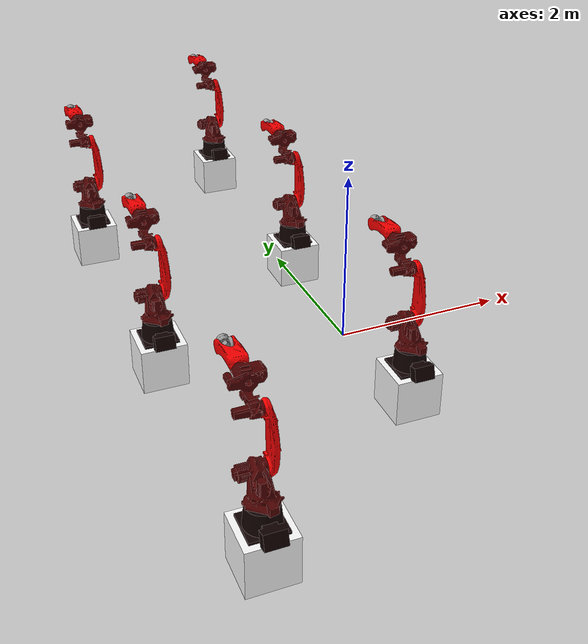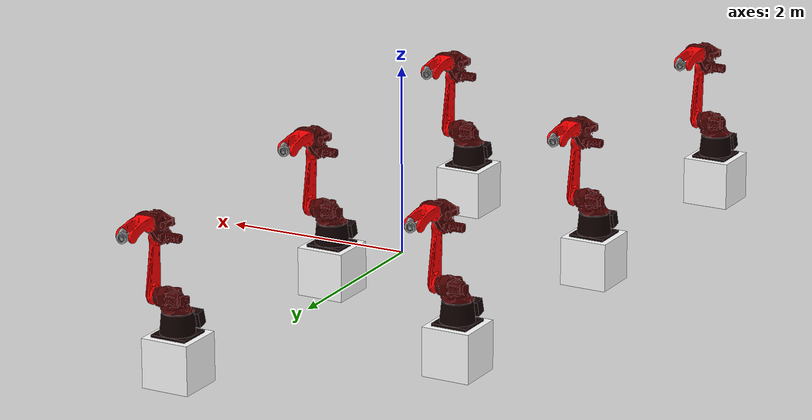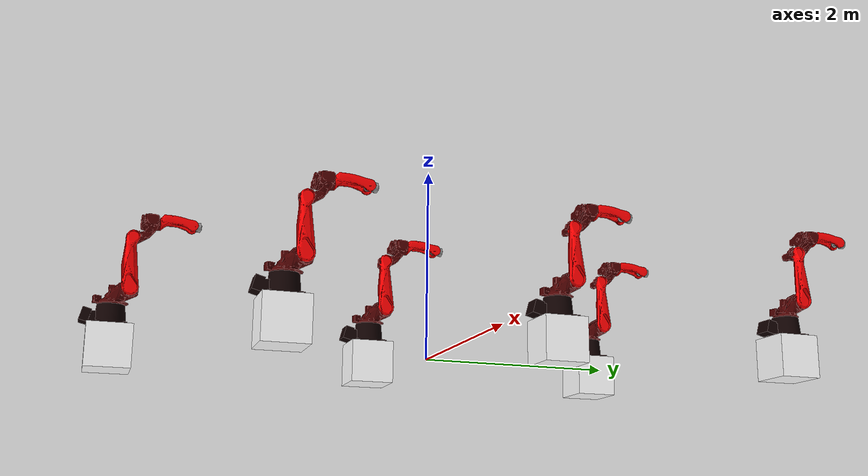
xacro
<?xml version="1.0"?>

<robot name="multi_welding_arm"
       xmlns:xacro="http://ros.org/wiki/xacro">

  <xacro:include filename="$(find mas_orchestra_digital_twin)/urdf/welding_arm_macro.xacro"/>
  <xacro:include filename="$(find mas_orchestra_digital_twin)/urdf/multi_ros2_control.xacro"/>

  <link name="world"/>

  <xacro:welding_arm ns="r1"/>
  <xacro:welding_arm ns="r2"/>
  <xacro:welding_arm ns="r3"/>
  <xacro:welding_arm ns="r4"/>
  <xacro:welding_arm ns="r5"/>
  <xacro:welding_arm ns="r6"/>

  <joint name="world_to_r1" type="fixed">
    <parent link="world"/>
    <child link="r1/world"/>
    <origin xyz="-2.2 -3 0.285" rpy="0 0 1.55"/>
  </joint>

  <joint name="world_to_r2" type="fixed">
    <parent link="world"/>
    <child link="r2/world"/>
    <origin xyz="-2.2 0 0.285" rpy="0 0 1.55"/>
  </joint>

  <joint name="world_to_r3" type="fixed">
    <parent link="world"/>
    <child link="r3/world"/>
    <origin xyz="-2.2 3 0.285" rpy="0 0 1.55"/>
  </joint>

  <joint name="world_to_r4" type="fixed">
    <parent link="world"/>
    <child link="r4/world"/>
    <origin xyz="0 -1.5 0.285" rpy="0 0 1.55"/>
  </joint>

  <joint name="world_to_r5" type="fixed">
    <parent link="world"/>
    <child link="r5/world"/>
    <origin xyz="0 1.5 0.285" rpy="0 0 1.55"/>
  </joint>

  <joint name="world_to_r6" type="fixed">
    <parent link="world"/>
    <child link="r6/world"/>
    <origin xyz="0 4.5 0.285" rpy="0 0 1.55"/>
  </joint>

</robot>

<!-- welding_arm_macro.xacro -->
<!-- Source: https://github.com/arsh09/ros_tutorials -->
<robot name="welding_arm" xmlns:xacro="http://ros.org/wiki/xacro">

  <xacro:property name="package_name" value="mas_orchestra_digital_twin"/>
  <xacro:property name="PI" value="3.14159265"/>
  <xacro:macro name="welding_arm" params="ns">

    <link name="${ns}/world"/>

    <joint name="${ns}/joint_platform" type="fixed">
        <parent link="${ns}/world"/>
        <child link="${ns}/platform" />
    </joint>

    <link name="${ns}/platform">
        <inertial>
        <origin xyz="0 0 0" rpy="0 0 0" />
        <mass value="100" />
        <inertia
            ixx="0"
            ixy="0"
            ixz="0"
            iyy="0"
            iyz="0"
            izz="0" />
        </inertial>
        <visual>
        <origin xyz="0 0 0" rpy="0 0 0" />
        <geometry>
            <box size="0.5 0.5 0.5"/>
        </geometry>
        <material name="">
            <color rgba="1 1 1 1" />
        </material>
        </visual>
        <collision>
        <origin xyz="0 0 0" rpy="0 0 0" />
        <geometry>
            <box size="0.5 0.5 0.5"/>
        </geometry>
        </collision>
    </link>

    <joint name="${ns}/joint_base" type="fixed">
        <parent link="${ns}/platform"/>
        <child link="${ns}/base_link" />
        <origin xyz="0 0 0.25" rpy = "${PI/2} 0 0"/>
        <axis xyz="0 0 0"/>
    </joint>

    <link name="${ns}/base_link">
        <inertial>
        <origin xyz="0 0 0" rpy="0 0 0" />
        <mass value="0.271689442075899" />
        <inertia
            ixx="0.000551467943673248"
            ixy="-3.54874087127204E-06"
            ixz="-1.62511816944923E-05"
            iyy="0.000400129321443915"
            iyz="-2.07321385851125E-06"
            izz="0.000582594592679587" />
        </inertial>
        <visual>
        <origin xyz="0 0 0" rpy="0 0 0" />
        <geometry>
            <mesh filename="package://${package_name}/meshes/welding_arm/visual/Base_baja_res.stl" scale="0.001 0.001 0.001"/>
        </geometry>
        <material name="">
            <color rgba="0.06 0.0 0.0 1" />
        </material>
        </visual>
        <collision>
        <origin xyz="0 0 0" rpy="0 0 0" />
        <geometry>
            <mesh filename="package://${package_name}/meshes/welding_arm/collision/Base_baja_res.stl" scale="0.001 0.001 0.001"/>
        </geometry>
        </collision>
    </link>

    <joint name="${ns}/joint_NAUO2" type="revolute">
        <parent link="${ns}/base_link"/>
        <child link="${ns}/NAUO2_link" />
        <origin xyz="0 0.235 0" rpy = "${-PI/2} 0 0"/>
        <axis xyz="0 0 -1" />
        <limit lower="-2.96" upper="2.96" effort="30" velocity="6.54" />
    </joint>

    <link name="${ns}/NAUO2_link">
        <inertial>
        <origin xyz="0 0 -0.235" rpy="0 0 0" />
        <mass value="0.271689442075899" />
        <inertia
            ixx="0.000551467943673248"
            ixy="-3.54874087127204E-06"
            ixz="-1.62511816944923E-05"
            iyy="0.000400129321443915"
            iyz="-2.07321385851125E-06"
            izz="0.000582594592679587" />
        </inertial>
        <visual>
        <origin xyz="0 0 -0.235" rpy="0 0 0" />
        <geometry>
            <mesh filename="package://${package_name}/meshes/welding_arm/visual/NAUO2_visual.stl" scale="0.001 0.001 0.001"/>
        </geometry>
        <material name="">
            <color rgba="0.3 0.0 0.0 1" />
        </material>
        </visual>
        <collision>
        <origin xyz="0 0 -0.235" rpy="0 0 0" />
        <geometry>
            <mesh filename="package://${package_name}/meshes/welding_arm/collision/NAUO2_collision.stl" scale="0.001 0.001 0.001"/>
        </geometry>
        </collision>
    </link>

    <joint name="${ns}/joint_NAUO4" type="revolute">
        <parent link="${ns}/NAUO2_link"/>
        <child link="${ns}/NAUO4_link" />
        <origin xyz="0.185 -0.12 0.205" rpy = "0 0 0"/>
        <axis xyz="0 -1 0" />
        <limit lower="-1.13" upper="2.53" effort="30" velocity="6.54" />
    </joint>

    <link name="${ns}/NAUO4_link">
        <inertial>
        <origin xyz="-0.185 0.12 -0.435" rpy="0 0 0" />
        <mass value="0.271689442075899" />
        <inertia
            ixx="0.000551467943673248"
            ixy="-3.54874087127204E-06"
            ixz="-1.62511816944923E-05"
            iyy="0.000400129321443915"
            iyz="-2.07321385851125E-06"
            izz="0.000582594592679587" />
        </inertial>
        <visual>
        <origin xyz="-0.185 0.12 -0.435" rpy="0 0 0" />
        <geometry>
            <mesh filename="package://${package_name}/meshes/welding_arm/visual/NAUO4_visual.stl" scale="0.001 0.001 0.001"/>
        </geometry>
        <material name="">
            <color rgba="1.0 0.0 0.0 1" />
        </material>
        </visual>
        <collision>
        <origin xyz="-0.185 0.12 -0.435" rpy="0 0 0" />
        <geometry>
            <mesh filename="package://${package_name}/meshes/welding_arm/collision/NAUO4_collision.stl" scale="0.001 0.001 0.001"/>
        </geometry>
        </collision>
    </link>

    <joint name="${ns}/joint_NAUO3" type="revolute">
        <parent link="${ns}/NAUO4_link"/>
        <child link="${ns}/NAUO3_link" />
        <origin xyz="0 0.031 0.6" rpy = "0 0 0"/>
        <axis xyz="0 -1 0" />
        <limit lower="-1.22" upper="3.31" effort="30" velocity="6.54" />
    </joint>

    <link name="${ns}/NAUO3_link">
        <inertial>
        <origin xyz="-0.185 0.089 -1.035" rpy="0 0 0" />
        <mass value="0.271689442075899" />
        <inertia
            ixx="0.000551467943673248"
            ixy="-3.54874087127204E-06"
            ixz="-1.62511816944923E-05"
            iyy="0.000400129321443915"
            iyz="-2.07321385851125E-06"
            izz="0.000582594592679587" />
        </inertial>
        <visual>
        <origin xyz="-0.185 0.089 -1.035" rpy="0 0 0" />
        <geometry>
            <mesh filename="package://${package_name}/meshes/welding_arm/visual/NAUO3_visual.stl" scale="0.001 0.001 0.001"/>
        </geometry>
        <material name="">
            <color rgba="0.3 0.0 0.0 1" />

        </material>
        </visual>
        <collision>
        <origin xyz="-0.185 0.089 -1.035" rpy="${PI/2} 0 0" />
        <geometry>
            <mesh filename="package://${package_name}/meshes/welding_arm/collision/NAUO3_collision.stl" scale="0.001 0.001 0.001"/>
        </geometry>
        </collision>
    </link>

    <joint name="${ns}/joint_NAUO5" type="revolute">
        <parent link="${ns}/NAUO3_link"/>
        <child link="${ns}/NAUO5_link" />
        <origin xyz="0.29 0.09 0.2" rpy = "${PI/2} 0 0"/>
        <axis xyz="-1 0 0" />
        <limit lower="-3.31" upper="3.31" effort="17" velocity="9.59" />
    </joint>

    <link name="${ns}/NAUO5_link">
        <inertial>
        <origin xyz="-0.475 -1.235 -0.001" rpy="0 0 0" />
        <mass value="0.271689442075899" />
        <inertia
            ixx="0.000551467943673248"
            ixy="-3.54874087127204E-06"
            ixz="-1.62511816944923E-05"
            iyy="0.000400129321443915"
            iyz="-2.07321385851125E-06"
            izz="0.000582594592679587" />
        </inertial>
        <visual>
        <origin xyz="-0.475 -1.235 -0.001" rpy="0 0 0" />
        <geometry>
            <mesh filename="package://${package_name}/meshes/welding_arm/visual/NAUO5_visual.stl" scale="0.001 0.001 0.001"/>
        </geometry>
        <material name="">
            <color rgba="1.0 0.0 0.0 1" />
        </material>
        </visual>
        <collision>
        <origin xyz="-0.475 -1.235 -0.001" rpy="0 0 0" />
        <geometry>
            <mesh filename="package://${package_name}/meshes/welding_arm/collision/NAUO5_collision.stl" scale="0.001 0.001 0.001"/>
        </geometry>
        </collision>
    </link>

    <joint name="${ns}/joint_NAUO6" type="revolute">
        <parent link="${ns}/NAUO5_link"/>
        <child link="${ns}/NAUO6_link" />
        <origin xyz="0.36 0 0" rpy = "${-PI/2} 0 0"/>
        <axis xyz="0 -1 0" />
        <limit lower="-2.35" upper="2.35" effort="17" velocity="9.59" />
    </joint>

    <link name="${ns}/NAUO6_link">
        <inertial>
        <origin xyz=" -0.835 -0.001 -1.235" rpy="0 0 0" />
        <mass value="0.271689442075899" />
        <inertia
            ixx="0.000551467943673248"
            ixy="-3.54874087127204E-06"
            ixz="-1.62511816944923E-05"
            iyy="0.000400129321443915"
            iyz="-2.07321385851125E-06"
            izz="0.000582594592679587" />
        </inertial>
        <visual>
        <origin xyz=" -0.835 -0.001 -1.235" rpy="0 0 0" />
        <geometry>
            <mesh filename="package://${package_name}/meshes/welding_arm/visual/NAUO6_visual.stl" scale="0.001 0.001 0.001"/>
        </geometry>
        <material name="">
            <color rgba="0.6 0.6 0.6 1" />
        </material>
        </visual>
        <collision>
        <origin xyz="-0.835 -0.001 -1.235" rpy="0 0 0" />
        <geometry>
            <mesh filename="package://${package_name}/meshes/welding_arm/collision/NAUO6_collision.stl" scale="0.001 0.001 0.001"/>
        </geometry>
        </collision>
    </link>

    <joint name="${ns}/joint_NAUO7" type="revolute">
        <parent link="${ns}/NAUO6_link"/>
        <child link="${ns}/NAUO7_link" />
        <origin xyz="0.0937 0 0" rpy = "0 0 0"/>
        <axis xyz="-1 0 0" />
        <limit lower="-6.1" upper="6.1" effort="10" velocity="17.45" />
    </joint>

    <link name="${ns}/NAUO7_link">
        <inertial>
        <origin xyz="-0.9287 -0.001 -1.235" rpy="0 0 0" />
        <mass value="0.271689442075899" />
        <inertia
            ixx="0.000551467943673248"
            ixy="-3.54874087127204E-06"
            ixz="-1.62511816944923E-05"
            iyy="0.000400129321443915"
            iyz="-2.07321385851125E-06"
            izz="0.000582594592679587" />
        </inertial>
        <visual>
        <origin xyz="-0.9287 -0.001 -1.235" rpy="0 0 0" />
        <geometry>
            <mesh filename="package://${package_name}/meshes/welding_arm/visual/NAUO7_visual.stl" scale="0.001 0.001 0.001"/>

        </geometry>
        <material name="">
            <color rgba="0.05 0.05 0.05 1" />

        </material>
        </visual>
        <collision>
        <origin xyz="-0.9287 -0.001 -1.235" rpy="0 0 0" />
        <geometry>
            <mesh filename="package://${package_name}/meshes/welding_arm/collision/NAUO7_collision.stl" scale="0.001 0.001 0.001"/>

        </geometry>
        </collision>
    </link>

    <gazebo>

        <plugin
        filename="gz-sim-joint-state-publisher-system"
        name="gz::sim::systems::JointStatePublisher">
        </plugin>

    </gazebo>

  </xacro:macro>

</robot>
